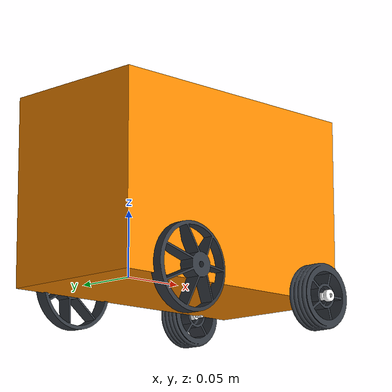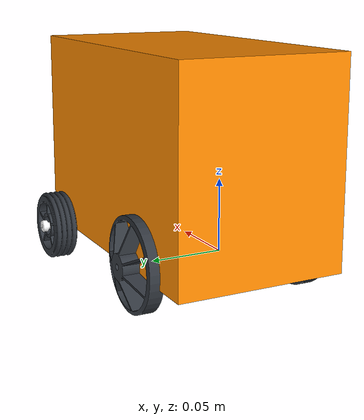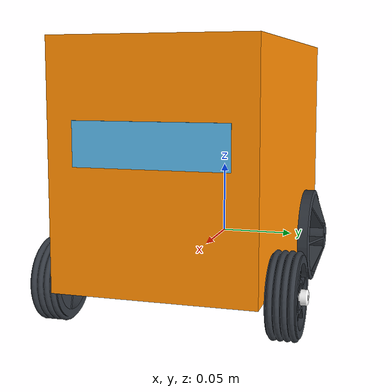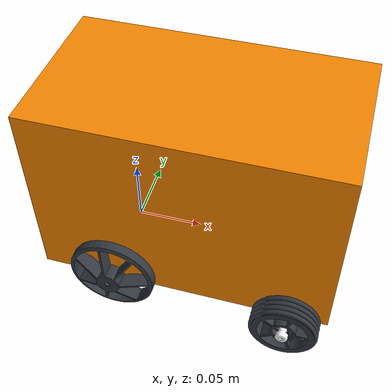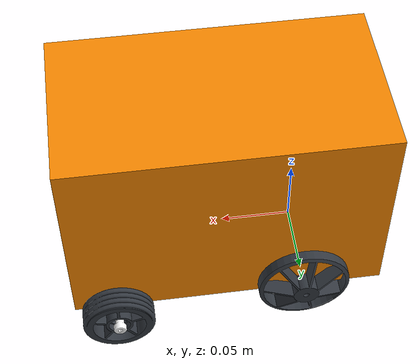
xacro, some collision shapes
<?xml version="1.0" ?>
<robot name="robot"
  xmlns:xacro="http://www.ros.org/wiki/xacro" canonical_link='base_link'>
  <xacro:property name="PI" value="3.1415926835897931"/>
  <xacro:property name="wheel_base" value="0.138" />
  <xacro:property name="wheel_track" value="0.135" />
  <xacro:property name="wheel_radius" value="${rear_tyre_r}" />
  <xacro:property name="car_body_length" value="0.22"/>
  <xacro:property name="car_body_width" value="0.12"/>
  <xacro:property name="car_body_height" value="0.145"/>
  <xacro:property name="car_body_mass" value="1.45"/>
  <xacro:property name="rear_tyre_x" value="0"/>
  <xacro:property name="rear_tyre_y" value="0.075"/>
  <xacro:property name="rear_tyre_r" value="0.0323"/>
  <xacro:property name="rear_tyre_length" value="0.02"/>
  <xacro:property name="rear_tyre_mass" value="0.08"/>

  <xacro:property name="rear_tyre_to_carbody_end" value="0.053" />
  <xacro:property name="front_tyre_x" value="0.1328"/>
  <xacro:property name="front_tyre_y" value="0.081"/>
  <xacro:property name="front_tyre_r" value="0.02515"/>
  <xacro:property name="front_tyre_length" value="0.02"/>
  <xacro:property name="front_tyre_mass" value="0.01"/>
  <xacro:property name="str_angle" value="0.6"/>
  <xacro:property name="str_length" value="0.00629"/>
  <xacro:property name="str_radius" value="0.003"/>
  <xacro:property name="str_mass" value="0.002"/>
  <xacro:property name="camera_x" value="0.163" />
  <xacro:property name="camera_y" value="0.0" />
  <xacro:property name="camera_z" value="0.0778" />
  <xacro:property name="camera_box_x" value="0.09" />
  <xacro:property name="camera_box_y" value="0.0258" />
  <xacro:property name="camera_box_z" value="0.025" />
  <xacro:property name="camera_box_mass" value="0.086" />
  <xacro:property name="lidar_box_x" value="0.0463" />
  <xacro:property name="lidar_box_y" value="0.054" />
  <xacro:property name="lidar_box_z" value="0.0348" />
  <xacro:property name="lidar_box_mass" value="0.035" />
  <xacro:property name="front_lidar_x" value="0.1325" />
  <xacro:property name="front_lidar_y" value="-0.023" />
  <xacro:property name="front_lidar_z" value="0.035" />
  <xacro:property name="rear_lidar_x" value="-0.018" />
  <xacro:property name="rear_lidar_y" value="0.028" />
  <xacro:property name="rear_lidar_z" value="0.04" />
  <xacro:property name="imu_x" value="-0.008" />
  <xacro:property name="imu_y" value="0.0" />
  <xacro:property name="imu_z" value="0.0710" />
  <xacro:property name="imu_box_x" value="0.04" />
  <xacro:property name="imu_box_y" value="0.036" />
  <xacro:property name="imu_box_z" value="0.0126" />
  <xacro:property name="imu_box_mass" value="0.019" />
  <xacro:include filename="colours.xacro" />
  <xacro:include filename="inertial_macros.xacro" />
  <link name="base_link"></link>

  <joint name="base_footprint_joint" type="fixed">
    <parent link="base_link"/>
    <child link="base_footprint"/>
    <origin xyz="0 0 ${-wheel_radius}"/>
  </joint>

  <link name="base_footprint"></link>
  <joint name="car_body_joint" type="fixed">
    <parent link="base_link"/>
    <child link="car_body_link"/>
    <origin xyz="0 0 0" rpy="0 0 0"/>
  </joint>

  <link name="car_body_link">
    <collision>
      <origin xyz="${rear_tyre_to_carbody_end} 0 ${wheel_radius * 2}" rpy="0 0 0"/>
      <geometry>
        <box size="${car_body_length} ${car_body_width} ${car_body_height}"/>
      </geometry>
    </collision>

    <visual>
      <origin xyz="0 0 0" rpy="0 0 -${PI/2}"/>

      <geometry>
        <mesh filename="package://robot/meshes/car_body_hidden.stl" scale="1 1 1"/>
      </geometry>
      <material name="orange"/>
    </visual>

    <xacro:inertial_box mass="${car_body_mass}" x="${car_body_length}" y="${car_body_width}" z="${car_body_height}">
      <origin xyz="0 0 0" rpy="0 0 0"/>
    </xacro:inertial_box>
  </link>
  <joint name="rear_right_wheel_joint" type="continuous">
    <parent link="base_link"/>
    <child link="rear_right_wheel_link"/>
    <origin xyz="${rear_tyre_x} -${rear_tyre_y} ${rear_tyre_r - rear_tyre_r}" rpy="0 0 0"/>
    <axis xyz="0 1 0"/>
    <dynamics damping="0.1"/>
    <limit effort="20" velocity="30"/>
  </joint>

  <link name="rear_right_wheel_link">
    <collision>
      <origin xyz="0 0.008 0" rpy="${PI/2} ${PI/2} 0"/>
      <geometry>
        <cylinder length="${rear_tyre_length}" radius="${rear_tyre_r}"/>
      </geometry>
    </collision>

    <visual>
      <origin xyz="0 0 0" rpy="-${PI/2} -${PI/2} 0"/>

      <geometry>
        <mesh filename="package://robot/meshes/rear_tyre_right.dae" scale="1 1 1"/>
      </geometry>
    </visual>

    <xacro:inertial_cylinder mass="${rear_tyre_mass}" radius="${rear_tyre_r}" length="${rear_tyre_length}">
      <origin xyz="0 0 0" rpy="0 0 0"/>
    </xacro:inertial_cylinder>

  </link>
  <joint name="rear_left_wheel_joint" type="continuous">
    <parent link="base_link"/>
    <child link="rear_left_wheel_link"/>
    <origin xyz="${rear_tyre_x} ${rear_tyre_y} ${rear_tyre_r - rear_tyre_r}" rpy="0 0 0"/>
    <axis xyz="0 1 0"/>
    <dynamics damping="0.1"/>
    <limit effort="20" velocity="30"/>
  </joint>

  <link name="rear_left_wheel_link">
    <collision>
      <origin xyz="0 -0.008 0" rpy="${PI/2} ${PI/2} 0"/>
      <geometry>
        <cylinder length="${rear_tyre_length}" radius="${rear_tyre_r}"/>
      </geometry>
    </collision>

    <visual>
      <origin xyz="0 0 0" rpy="${PI/2} ${PI/2} 0"/>

      <geometry>
        <mesh filename="package://robot/meshes/rear_tyre_left.dae" scale="1 1 1"/>
      </geometry>
    </visual>

    <xacro:inertial_cylinder mass="${rear_tyre_mass}" radius="${rear_tyre_r}" length="${rear_tyre_length}">
      <origin xyz="0 0 0" rpy="0 0 0"/>
    </xacro:inertial_cylinder>
  </link>
  <joint name="front_right_steering_joint" type="revolute">
    <parent link="base_link"/>
    <child link="front_right_steering_link"/>
    <origin xyz="${front_tyre_x} -${front_tyre_y} ${front_tyre_r - rear_tyre_r}" rpy="0 0 0"/>
    <axis xyz="0 0 -1"/>
    <limit lower="${-str_angle}" upper="${str_angle}" effort="20" velocity="30"/>
    <dynamics damping="10.0" friction="0.0"/>
  </joint>

  <link name="front_right_steering_link">
    <collision>
      <origin xyz="0 0 0" rpy="0 -${PI/2} -${PI/2}"/>
      <geometry>
        <cylinder length="${str_length}" radius="${str_radius}"/>
      </geometry>
    </collision>

    <visual>
      <origin xyz="0 0.0001 -0.0001" rpy="0 -${PI/2} -${PI/2}"/>

      <geometry>
        <mesh filename="package://robot/meshes/front_right_steering.dae" scale="1 1 1"/>
      </geometry>
    </visual>

    <xacro:inertial_cylinder mass="${str_mass}" radius="${str_radius}" length="${str_length}">
      <origin xyz="0 0 0" rpy="0 0 0"/>
    </xacro:inertial_cylinder>
  </link>
  <joint name="front_right_wheel_joint" type="continuous">
    <parent link="front_right_steering_link"/>
    <child link="front_right_wheel_link"/>
    <origin xyz="0 0 0" rpy="0 0 0"/>
    <axis xyz="0 1 0"/>
    <dynamics damping="0.1"/>
    <limit effort="20" velocity="30"/>
  </joint>

  <link name="front_right_wheel_link">
    <collision>
      <origin xyz="0 0.01 0" rpy="0 -${PI/2} ${PI/2}"/>
      <geometry>
        <cylinder length="${front_tyre_length}" radius="${front_tyre_r}"/>
      </geometry>
    </collision>

    <visual>
      <origin xyz="0 0.004 0" rpy="${PI} -${PI/2} ${PI/2}"/>

      <geometry>
        <mesh filename="package://robot/meshes/front_tyre_right.dae" scale="1 1 1"/>
      </geometry>
    </visual>

    <xacro:inertial_cylinder mass="${front_tyre_mass}" radius="${front_tyre_r}" length="${front_tyre_length}">
      <origin xyz="0 0 0" rpy="0 0 0"/>
    </xacro:inertial_cylinder>
  </link>
  <joint name="front_left_steering_joint" type="revolute">
    <parent link="base_link"/>
    <child link="front_left_steering_link"/>
    <origin xyz="${front_tyre_x} ${front_tyre_y} ${front_tyre_r - rear_tyre_r}" rpy="0 0 0"/>
    <axis xyz="0 0 1"/>
    <limit lower="${-str_angle}" upper="${str_angle}" effort="20" velocity="30"/>
    <dynamics damping="10.0" friction="0.0"/>
  </joint>

  <link name="front_left_steering_link">
    <collision>
      <origin xyz="0 0 0" rpy="0 ${PI/2} ${PI/2}"/>
      <geometry>
        <cylinder length="${str_length}" radius="${str_radius}"/>
      </geometry>
    </collision>

    <visual>
      <origin xyz="-0.0002 0.0008 -0.0003" rpy="0 -${PI/2} ${PI/2}"/>

      <geometry>
        <mesh filename="package://robot/meshes/front_left_steering.dae" scale="1 1 1"/>
      </geometry>
    </visual>

    <xacro:inertial_cylinder mass="${str_mass}" radius="${str_radius}" length="${str_length}">
      <origin xyz="0 0 0" rpy="0 0 0"/>
    </xacro:inertial_cylinder>
  </link>
  <joint name="front_left_wheel_joint" type="continuous">
    <parent link="front_left_steering_link"/>
    <child link="front_left_wheel_link"/>
    <origin xyz="0 0 0" rpy="0 0 0"/>
    <axis xyz="0 1 0"/>
    <dynamics damping="0.1"/>
    <limit effort="20" velocity="30"/>
  </joint>

  <link name="front_left_wheel_link">
    <collision>
      <origin xyz="0 -0.01 0" rpy="${PI/2} 0 0"/>
      <geometry>
        <cylinder length="${front_tyre_length}" radius="${front_tyre_r}"/>
      </geometry>
    </collision>

    <visual>
      <origin xyz="0 -0.0025 0" rpy="${PI/2} 0 0"/>

      <geometry>
        <mesh filename="package://robot/meshes/front_tyre_left.dae" scale="1 1 1"/>
      </geometry>
    </visual>

    <xacro:inertial_cylinder mass="${front_tyre_mass}" radius="${front_tyre_r}" length="${front_tyre_length}">
      <origin xyz="0 0 0" rpy="0 0 0"/>
    </xacro:inertial_cylinder>
  </link>
  <joint name="camera_d435f_joint" type="fixed">
    <parent link="base_link"/>
    <child link="camera_d435f"/>
    <origin xyz="${camera_x} ${camera_y} ${camera_z}" rpy="0 0 0"/>
  </joint>

  <link name="camera_d435f">
    <collision name="collision-base">
      <origin xyz="-0.012 0 0" rpy="${PI/2} 0 ${PI/2}"/>
      <geometry>
        <box size="${camera_box_x} ${camera_box_y} ${camera_box_z}"/>
      </geometry>
    </collision>
    <visual>
      <origin xyz="0 0 0" rpy="${PI/2} 0 ${PI/2}"/>

      <geometry>
        <mesh filename="package://robot/meshes/Camera_D435f.dae" scale="1 1 1"/>
      </geometry>
    </visual>

    <xacro:inertial_box mass="${camera_box_mass}" x="${camera_box_x}" y="${camera_box_y}" z="${camera_box_z}">
      <origin xyz="0 0 0" rpy="0 0 0"/>
    </xacro:inertial_box>
  </link>

  <joint name="camera_d435f_to_camera_link" type="fixed">
    <parent link="camera_d435f"/>
    <child link="camera_link"/>
    <origin xyz="0 0 0" rpy="0 0 0"/>
  </joint>

  <link name="camera_link"/>
  <gazebo reference="camera_d435f">
    <sensor name="camera_d435f" type="rgbd_camera">
      <always_on>1</always_on>
      <update_rate>15</update_rate>
      <visualize>true</visualize>
      <topic>/camera/camera/color</topic>
      <camera_info_topic>/camera/camera/color/camera_info</camera_info_topic>
      <ignition_frame_id>camera_d435f</ignition_frame_id>
      <enable_metrics>true</enable_metrics>
      <camera name="camera">
        <horizontal_fov>1.204</horizontal_fov>
        <lens>
          <intrinsics>
            <fx>554.25469</fx>
            <fy>554.25469</fy>
            <cx>320.5</cx>
            <cy>240.5</cy>
            <s>0</s>
          </intrinsics>
        </lens>
        <distortion>
          <k1>0.0</k1>
          <k2>0.0</k2>
          <k3>0.0</k3>
          <p1>0.0</p1>
          <p2>0.0</p2>
          <center>0.5 0.5</center>
        </distortion>
        <image>
          <width>640</width>
          <height>480</height>
          <format>RGB_INT8</format>
        </image>
        <clip>
          <near>0.01</near>
          <far>300</far>
        </clip>
        <depth_camera>
          <clip>
            <near>0.1</near>
            <far>10</far>
          </clip>
        </depth_camera>
        <noise>
          <type>gaussian</type>
          <mean>0</mean>
          <stddev>0.007</stddev>
        </noise>
      </camera>
    </sensor>
  </gazebo>
  <joint name="front_lidar_joint" type="fixed">
    <parent link="base_link"/>
    <child link="front_lidar"/>
    <origin xyz="${front_lidar_x} ${front_lidar_y} ${front_lidar_z}" rpy="0 0 0"/>
  </joint>

  <link name="front_lidar">
    <collision name="collision-base">
      <origin xyz="0 0 0" rpy="0 0 ${PI}"/>
      <geometry>
        <box size="${lidar_box_x} ${lidar_box_y} ${lidar_box_z}"/>
      </geometry>
    </collision>
    <visual>
      <origin xyz="0.00005 0.0005 -${wheel_radius / 2 + 0.001}" rpy="0 0 -${PI/2}"/>

      <geometry>
        <mesh filename="package://robot/meshes/front_lidar.dae" scale="1 1 1"/>
      </geometry>
    </visual>

    <xacro:inertial_box mass="${lidar_box_mass}" x="${lidar_box_x}" y="${lidar_box_y}" z="${lidar_box_z}">
      <origin xyz="0 0 0" rpy="0 0 0"/>
    </xacro:inertial_box>
  </link>
  <gazebo reference="front_lidar">
    <sensor name="front_lidar" type="gpu_lidar">
      <always_on>1</always_on>
      <update_rate>10</update_rate>
      <visualize>true</visualize>
      <topic>/lidar1/scan</topic>
      <ignition_frame_id>front_lidar</ignition_frame_id>
      <ray>
        <scan>
          <horizontal>
            <samples>450</samples>
            <resolution>1</resolution>
            <min_angle>-3.14159</min_angle>
            <max_angle>3.14159</max_angle>
          </horizontal>
          <vertical>
            <samples>1</samples>
            <resolution>1</resolution>
            <min_angle>0</min_angle>
            <max_angle>0</max_angle>
          </vertical>
        </scan>
        <range>
          <min>0.02</min>
          <max>12.0</max>
          <resolution>0.001</resolution>
        </range>
        <noise>
          <type>gaussian</type>
          <mean>0.0</mean>
          <stddev>0.02</stddev>
        </noise>
      </ray>
    </sensor>
  </gazebo>
  <joint name="rear_lidar_joint" type="fixed">
    <parent link="base_link"/>
    <child link="rear_lidar"/>
    <origin xyz="${rear_lidar_x} ${rear_lidar_y} ${rear_lidar_z}" rpy="0 0 ${PI}"/>
  </joint>

  <link name="rear_lidar">
    <collision name="collision-base">
      <origin xyz="0 0 0" rpy="0 0 0"/>
      <geometry>
        <box size="${lidar_box_x} ${lidar_box_y} ${lidar_box_z}"/>
      </geometry>
    </collision>
    <visual>
      <origin xyz="-0.0034 0 -${wheel_radius / 2 + 0.001}" rpy="0 0 -${PI/2}"/>

      <geometry>
        <mesh filename="package://robot/meshes/rear_lidar.dae" scale="1 1 1"/>
      </geometry>
    </visual>

    <xacro:inertial_box mass="${lidar_box_mass}" x="${lidar_box_x}" y="${lidar_box_y}" z="${lidar_box_z}">
      <origin xyz="0 0 0" rpy="0 0 0"/>
    </xacro:inertial_box>
  </link>
  <gazebo reference="rear_lidar">
    <sensor name="rear_lidar" type="gpu_lidar">
      <always_on>1</always_on>
      <update_rate>10</update_rate>
      <visualize>true</visualize>
      <topic>/lidar2/scan</topic>
      <ignition_frame_id>rear_lidar</ignition_frame_id>
      <ray>
        <scan>
          <horizontal>
            <samples>450</samples>
            <resolution>1</resolution>
            <min_angle>-3.14159</min_angle>
            <max_angle>3.14159</max_angle>
          </horizontal>
          <vertical>
            <samples>1</samples>
            <resolution>1</resolution>
            <min_angle>0</min_angle>
            <max_angle>0</max_angle>
          </vertical>
        </scan>
        <range>
          <min>0.02</min>
          <max>12.0</max>
          <resolution>0.001</resolution>
        </range>
        <noise>
          <type>gaussian</type>
          <mean>0.0</mean>
          <stddev>0.02</stddev>
        </noise>
      </ray>
    </sensor>
  </gazebo>
  <joint name="laser_frame_joint" type="fixed">
    <parent link="base_link"/>
    <child link="laser_frame"/>
    <origin xyz="${(front_lidar_x + rear_lidar_x) / 2} ${(front_lidar_y + rear_lidar_y) / 2} ${(front_lidar_z + rear_lidar_z) / 2}" rpy="0 0 0"/>
  </joint>

  <link name="laser_frame"/>
  <joint name="imu_joint" type="fixed">
    <parent link="base_link"/>
    <child link="imu_link"/>
    <origin xyz="${imu_x} ${imu_y} ${imu_z}" rpy="0 0 0"/>
  </joint>

  <link name="imu_link">
    <collision name="collision-base">
      <origin xyz="0 0 0" rpy="0 0 0"/>
      <geometry>
        <box size="${imu_box_x} ${imu_box_y} ${imu_box_z}"/>
      </geometry>
    </collision>
    <visual>
      <origin xyz="0 0 0" rpy="0 0 -${PI/2}"/>

      <geometry>
        <mesh filename="package://robot/meshes/IMU.dae" scale="1 1 1"/>
      </geometry>
    </visual>

    <xacro:inertial_box mass="${imu_box_mass}" x="${imu_box_x}" y="${imu_box_y}" z="${imu_box_z}">
      <origin xyz="0 0 0" rpy="0 0 0"/>
    </xacro:inertial_box>
  </link>

  <joint name="imu_link_to_imu" type="fixed">
    <parent link="imu_link"/>
    <child link="imu"/>
    <origin xyz="0 0 0" rpy="0 0 0"/>
  </joint>

  <link name="imu"/>
  <gazebo reference="imu_link">
    <sensor name="imu_link" type="imu">
      <always_on>1</always_on>
      <update_rate>100</update_rate>
      <visualize>true</visualize>
      <topic>/imu_data</topic>
      <ignition_frame_id>imu_link</ignition_frame_id>
      <imu>
        <angular_velocity>
          <x>
            <noise type="gaussian">
              <mean>0</mean>
              <stddev>0.001</stddev>
              <bias_mean>0.0001</bias_mean>
              <bias_stddev>0.00001</bias_stddev>
            </noise>
          </x>
          <y>
            <noise type="gaussian">
              <mean>0</mean>
              <stddev>0.001</stddev>
              <bias_mean>0.0001</bias_mean>
              <bias_stddev>0.00001</bias_stddev>
            </noise>
          </y>
          <z>
            <noise type="gaussian">
              <mean>0</mean>
              <stddev>0.001</stddev>
              <bias_mean>0.0001</bias_mean>
              <bias_stddev>0.00001</bias_stddev>
            </noise>
          </z>
        </angular_velocity>
        <linear_acceleration>
          <x>
            <noise type="gaussian">
              <mean>0</mean>
              <stddev>0.02</stddev>
              <bias_mean>0.001</bias_mean>
              <bias_stddev>0.0005</bias_stddev>
            </noise>
          </x>
          <y>
            <noise type="gaussian">
              <mean>0</mean>
              <stddev>0.02</stddev>
              <bias_mean>0.001</bias_mean>
              <bias_stddev>0.0005</bias_stddev>
            </noise>
          </y>
          <z>
            <noise type="gaussian">
              <mean>0</mean>
              <stddev>0.02</stddev>
              <bias_mean>0.001</bias_mean>
              <bias_stddev>0.0005</bias_stddev>
            </noise>
          </z>
        </linear_acceleration>
      </imu>
    </sensor>
  </gazebo>
  <gazebo reference="car_body_link">
    <mu1>0.8</mu1>
    <mu2>0.8</mu2>
  </gazebo>

  <gazebo reference="front_right_wheel_link">
    <mu1>1.2</mu1>
    <mu2>1.2</mu2>
  </gazebo>

  <gazebo reference="front_left_wheel_link">
    <mu1>1.2</mu1>
    <mu2>1.2</mu2>
  </gazebo>

  <gazebo reference="rear_right_wheel_link">
    <mu1>1.2</mu1>
    <mu2>1.2</mu2>
  </gazebo>

  <gazebo reference="rear_left_wheel_link">
    <mu1>1.2</mu1>
    <mu2>1.2</mu2>
  </gazebo>

  <gazebo>
    <plugin filename="libignition-gazebo-ackermann-steering-system.so" name="ignition::gazebo::systems::AckermannSteering">
      <left_steering_joint>front_left_steering_joint</left_steering_joint>
      <right_steering_joint>front_right_steering_joint</right_steering_joint>
      <left_joint>rear_left_wheel_joint</left_joint>
      <right_joint>rear_right_wheel_joint</right_joint>
      <wheel_base>${wheel_base}</wheel_base>
      <wheel_track>${wheel_track}</wheel_track>
      <wheel_radius>${wheel_radius}</wheel_radius>
      <min_velocity>-30</min_velocity>
      <max_velocity>30</max_velocity>
      <min_acceleration>-20</min_acceleration>
      <max_acceleration>20</max_acceleration>
      <topic>cmd_vel</topic>
      <odom_publish_frequency>50</odom_publish_frequency>
      <frame_id>odom</frame_id>
      <child_frame_id>base_link</child_frame_id>
    </plugin>
  </gazebo>

  <gazebo>
    <plugin filename="libignition-gazebo-joint-state-publisher-system.so" name="ignition::gazebo::systems::JointStatePublisher">
      <joint_name>front_left_wheel_joint</joint_name>
      <joint_name>rear_left_wheel_joint</joint_name>
      <joint_name>front_right_wheel_joint</joint_name>
      <joint_name>rear_right_wheel_joint</joint_name>
      <joint_name>front_left_steering_joint</joint_name>
      <joint_name>front_right_steering_joint</joint_name>
      <topic>/joint_states</topic>
    </plugin>
    <plugin filename="ignition-gazebo-pose-publisher-system" name="gz::sim::systems::PosePublisher">
      <publish_link_pose>false</publish_link_pose>
      <publish_collision_pose>false</publish_collision_pose>
      <publish_visual_pose>false</publish_visual_pose>
      <publish_sensor_pose>false</publish_sensor_pose>
      <publish_model_pose>true</publish_model_pose>
      <use_pose_vector_msg>true</use_pose_vector_msg>
      <publish_nested_model_pose>true</publish_nested_model_pose>
      <update_frequency>50</update_frequency>
    </plugin>
  </gazebo>

</robot>

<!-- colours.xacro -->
<robot xmlns:xacro="http://www.ros.org/wiki/xacro">

	<material name="white">
    	<color rgba="1 1 1 1"/>
	</material>

	<material name="gunmetal">
    	<color rgba="0.2 0.22 0.25 1"/>
	</material>

	<material name="orange">
    	<color rgba="1 0.545098 0 1"/>
	</material>

	<material name="blue">
    	<color rgba="0.2 0.2 1 1"/>
	</material>

	<material name="black">
    	<color rgba="0 0 0 1"/>
	</material>

	<material name="magenta_tint">
    	<color rgba="0.6 0.5 0.5 1"/>
	</material>

</robot>

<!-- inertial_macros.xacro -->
<robot xmlns:xacro="http://www.ros.org/wiki/xacro">
    <xacro:macro name="inertial_sphere" params="mass radius *origin">
        <inertial>
            <xacro:insert_block name="origin"/>
            <mass value="${mass}" />
            <inertia ixx="${(2/5) * mass * (radius*radius)}" ixy="0.0" ixz="0.0" iyy="${(2/5) * mass * (radius*radius)}" iyz="0.0" izz="${(2/5) * mass * (radius*radius)}" />
        </inertial>
    </xacro:macro>

    <xacro:macro name="inertial_box" params="mass x y z *origin">
        <inertial>
            <xacro:insert_block name="origin"/>
            <mass value="${mass}" />
            <inertia ixx="${(1/12) * mass * (y*y+z*z)}" ixy="0.0" ixz="0.0" iyy="${(1/12) * mass * (x*x+z*z)}" iyz="0.0" izz="${(1/12) * mass * (x*x+y*y)}" />
        </inertial>
    </xacro:macro>

    <xacro:macro name="inertial_cylinder" params="mass length radius *origin">
        <inertial>
            <xacro:insert_block name="origin"/>
            <mass value="${mass}" />
            <inertia ixx="${(1/12) * mass * (3*radius*radius + length*length)}" ixy="0.0" ixz="0.0" iyy="${(1/12) * mass * (3*radius*radius + length*length)}" iyz="0.0" izz="${(1/2) * mass * (radius*radius)}" />
        </inertial>
    </xacro:macro>

</robot>
